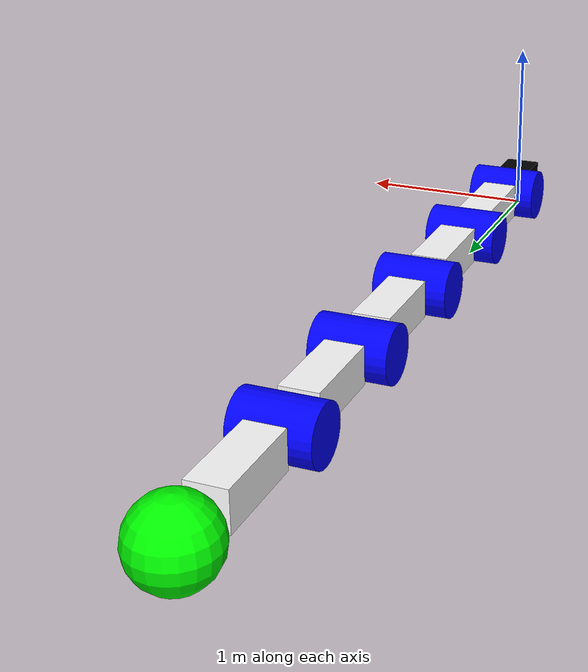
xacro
<?xml version="1.0"?>

<robot name="snake" xmlns:xacro="http://ros.org/wiki/xacro">

    <xacro:property name="joint_diam" value="0.3" />
    <xacro:property name="link_len" value="0.5" />
    <xacro:property name="pi" value="3.1415" />

    <material name="blue">
        <color rgba="0 0 1 1"/>
    </material>

    <material name="green">
        <color rgba="0 1 0 1"/>
    </material>

    <material name="black">
        <color rgba="0 0 0 1"/>
    </material>

    <material name="white">
        <color rgba="1 1 1 1"/>
    </material>

    <xacro:macro name="default_inertial" params="mass">
        <inertial>
        <mass value="${mass}" />
        <inertia ixx="1.0" ixy="0.0" ixz="0.0" iyy="1.0" iyz="0.0" izz="1.0" />
        </inertial>
    </xacro:macro>

    <link name="tail">
        <visual>
            <geometry>
                <box size="0.2 0.2 0.2"/>
            </geometry>
            <origin rpy="0 0 0" xyz="0 0 ${joint_diam/2}"/>
            <material name="black"/>
        </visual>
        <collision>
            <geometry>
                <box size="0.2 0.2 0.2"/>
            </geometry>
            <origin rpy="0 0 0" xyz="0 0 ${joint_diam/2}"/>
        </collision>
        <xacro:default_inertial mass="1"/>
    </link>

    <xacro:macro name="extra_link" params="num parent z:=0 y:=${(link_len+joint_diam)+0.01}">

        <joint name="joint_fixed${num}" type="fixed">
            <parent link="${parent}"/>
            <child link="joint_cylinder${num}"/>
            <origin rpy="0 0 0" xyz="0 ${y+0.01} ${z}"/>
        </joint>

        <link name="joint_cylinder${num}">
            <visual>
                <geometry>
                    <cylinder length="0.4" radius="${joint_diam/2}"/>
                </geometry>
                <origin rpy="0 ${pi/2} 0" xyz="0 0 0"/>
                <material name="blue"/>
            </visual>
            <collision>
                <geometry>
                    <cylinder length="0.4" radius="${joint_diam/2}"/>
                </geometry>
                <origin rpy="0 ${pi/2} 0" xyz="0 0 0"/>
            </collision>
            <xacro:default_inertial mass="1"/>
        </link>

        <joint name="joint${num}" type="revolute">
            <parent link="joint_cylinder${num}"/>
            <child link="link${num}"/>
            <origin rpy="0 0 0" xyz="0 0 0"/>
            <axis xyz="1 0 0"/>
            <dynamics damping="0.0" friction="0.0"/>
            <limit effort="40" velocity="2" lower="-2" upper="2" />
        </joint>

        <link name="link${num}">
            <visual>
                <geometry>
                    <box size="0.2 ${link_len} 0.2"/>
                </geometry>
                <origin rpy="0 0 0" xyz="0 ${link_len/2+joint_diam/2+0.01} 0"/>
                <material name="white"/>
            </visual>
            <collision>
                <geometry>
                    <box size="0.2 ${link_len} 0.2"/>
                </geometry>
                <origin rpy="0 0 0" xyz="0 ${link_len/2+joint_diam/2+0.01} 0"/>
            </collision>
            <xacro:default_inertial mass="1"/>
        </link>

        <!-- This block provides the simulator (Gazebo) with information on a few additional
        physical properties. See http://gazebosim.org/tutorials/?tut=ros_urdf for more-->
        <gazebo reference="link${num}">
            <mu1 value="200.0"/>
            <mu2 value="100.0"/>
            <kp value="10000000.0" />
            <kd value="1.0" />
            <material>Gazebo/Grey</material>
        </gazebo>

        <!-- This block connects the wheel joint to an actuator (motor), which informs both
        simulation and visualization of the robot -->
        <transmission name="joint${num}_trans">
            <type>transmission_interface/SimpleTransmission</type>
            <actuator name="joint${num}_motor">
                <hardwareInterface>hardware_interface/EffortJointInterface</hardwareInterface>
                <mechanicalReduction>1</mechanicalReduction>
            </actuator>
            <joint name="joint${num}">
                <hardwareInterface>hardware_interface/EffortJointInterface</hardwareInterface>
            </joint>
        </transmission>

    </xacro:macro>

    <xacro:extra_link num="1" parent="tail" z="${joint_diam/2}" y="${(0.1+joint_diam/2)}"/>
    <xacro:extra_link num="2" parent="link1"/>
    <xacro:extra_link num="3" parent="link2"/>
    <xacro:extra_link num="4" parent="link3"/>
    <xacro:extra_link num="5" parent="link4"/>

    <joint name="joint_fixed_start" type="fixed">
        <parent link="link5"/>
        <child link="head"/>
        <origin rpy="0 0 0" xyz="0 ${joint_diam/2 + link_len+0.05+0.2} 0 "/>
    </joint>

    <link name="head">
        <visual>
            <geometry>
                <sphere radius="0.2"/>
            </geometry>
            <origin rpy="0 0 0" xyz="0 0 0"/>
            <material name="green"/>
        </visual>
        <collision>
            <geometry>
                <sphere radius="0.2"/>
            </geometry>
            <origin rpy="0 0 0" xyz="0 0 0"/>
        </collision>
        <xacro:default_inertial mass="1"/>
    </link>

  <!-- Gazebo plugin for ROS Control -->
  <gazebo>
    <plugin name="gazebo_ros_control" filename="libgazebo_ros_control.so">
      <robotNamespace>/snake</robotNamespace>
    </plugin>
  </gazebo>

</robot>
